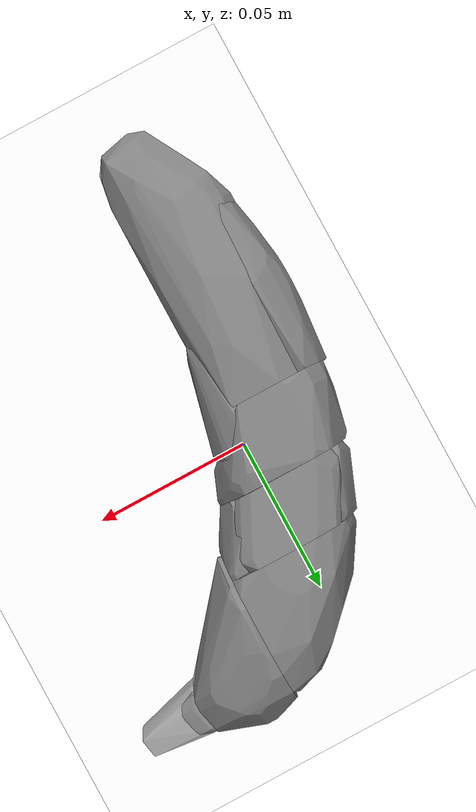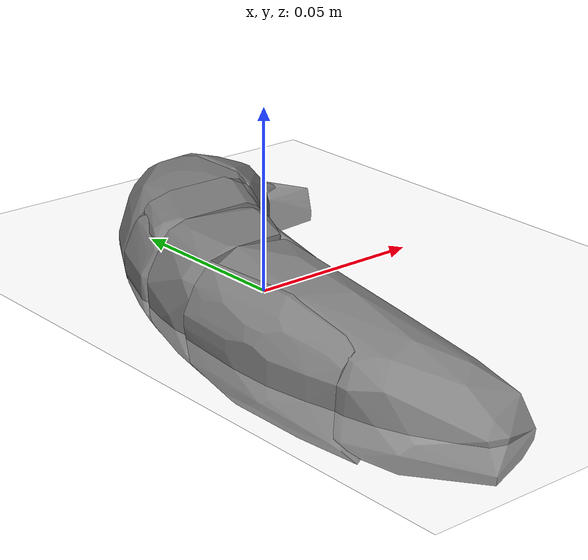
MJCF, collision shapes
<mujoco model="banana">
  <compiler meshdir="assets"/>
  <visual>
    <headlight ambient="0 0 0" diffuse="0 0 0" specular="1 1 1"/>
    <quality shadowsize="8192"/>
  </visual>

  <asset>
	<texture name="banana" file="assets/texture_map.png" type="2d"/>
    <material name="banana" texture="banana" specular="1" shininess="1"/>
    <mesh file="textured_simple.obj" scale="1 1 1"/>
    <mesh file="collision000.obj" scale="1 1 1"/>
    <mesh file="collision001.obj" scale="1 1 1"/>
    <mesh file="collision002.obj" scale="1 1 1"/>
    <mesh file="collision003.obj" scale="1 1 1"/>
    <mesh file="collision004.obj" scale="1 1 1"/>
    <mesh file="collision005.obj" scale="1 1 1"/>
    <mesh file="collision006.obj" scale="1 1 1"/>
    <mesh file="collision007.obj" scale="1 1 1"/>
    <mesh file="collision008.obj" scale="1 1 1"/>
    <mesh file="collision009.obj" scale="1 1 1"/>
    <material name="floor" reflectance=".1"/>
  </asset>

  <default>
    <default class="visual">
      <geom type="mesh" group="1" contype="0" conaffinity="0"/>
    </default>
    <default class="collision">
      <geom type="mesh" group="3" mass="0"/>
    </default>
  </default>

  <worldbody>
    <light pos=".4 -.4 .3" dir="-2 2 -1.5" diffuse=".6 .6 .6"/>
    <light pos="-.2 -.4 .3" dir="1 2 -1.5" diffuse=".6 .6 .6"/>
    <geom type="plane" size="5 5 .01" rgba="1 1 1 1" material="floor"/>
    <body name="banana">
      <freejoint/>
      <geom mesh="textured_simple" material="banana" euler="0 0 0" class="visual"/>
	  <geom mesh="collision000" class="collision"/>
	  <geom mesh="collision001" class="collision"/>
	  <geom mesh="collision002" class="collision"/>
	  <geom mesh="collision003" class="collision"/>
	  <geom mesh="collision004" class="collision"/>
	  <geom mesh="collision005" class="collision"/>
	  <geom mesh="collision006" class="collision"/>
	  <geom mesh="collision007" class="collision"/>
	  <geom mesh="collision008" class="collision"/>
	  <geom mesh="collision009" class="collision"/>
    </body>
  </worldbody>
</mujoco>
